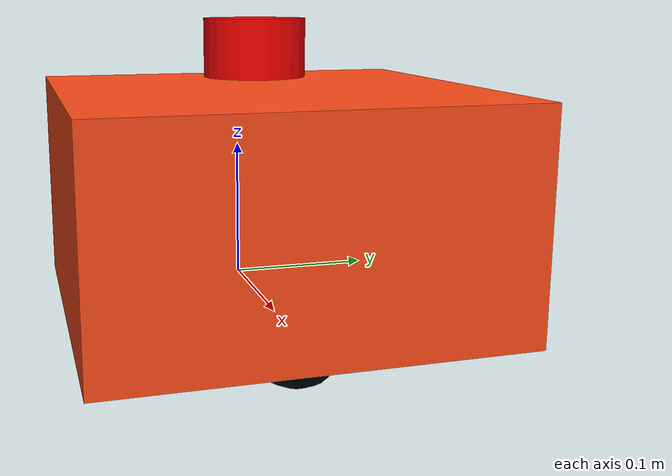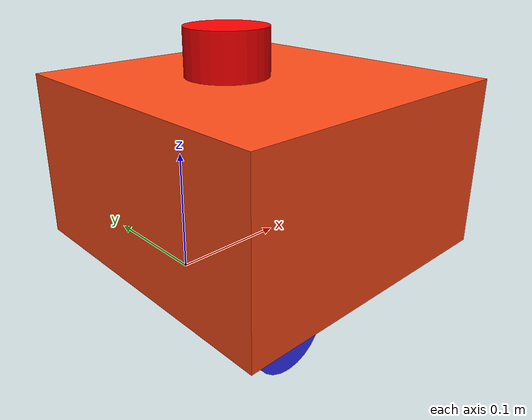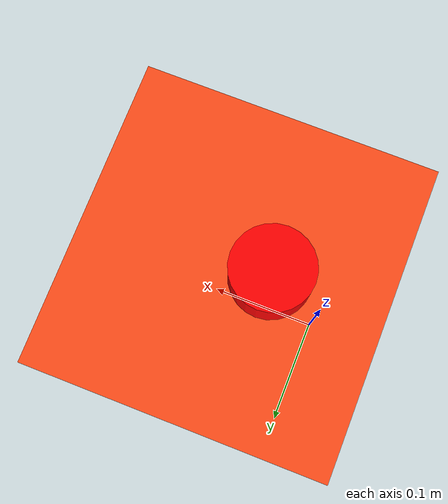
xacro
<?xml version="1.0"?>
<robot xmlns:xacro="http://www.ros.org/wiki/xacro" name="robot">

    <xacro:arg name="use_ros2_control" default="true"/>
    <xacro:arg name="sim_mode" default="false"/>

    <xacro:include filename="robot_main.xacro" />
    <xacro:include filename="lidar.xacro" />

    <xacro:if value="$(arg use_ros2_control)">
        <xacro:include filename="ros2_control.xacro" />
    </xacro:if>
    <xacro:unless value="$(arg use_ros2_control)">
        <xacro:include filename="gz_diff_drive_control.xacro" />
    </xacro:unless>

</robot>

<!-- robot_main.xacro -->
<robot xmlns:xacro="http://www.ros.org/wiki/xacro">

    <xacro:include filename="inertial_macros.xacro"/>

    <material name="white">
        <color rgba="1 1 1 1" />
    </material>

    <material name="orange">
        <color rgba="1 0.3 0.1 1"/>
    </material>

    <material name="blue">
        <color rgba="0.2 0.2 1 1"/>
    </material>

    <material name="black">
        <color rgba="0 0 0 1"/>
    </material>

    <material name="red">
        <color rgba="1 0 0 1"/>
    </material>

    <!-- BASE LINK -->
    <link name="base_link">
    </link>

    <!-- BASE_FOOTPRINT LINK -->
    <joint name="base_footprint_joint" type="fixed">
        <parent link="base_link"/>
        <child link="base_footprint"/>
        <origin xyz="0 0 0" rpy="0 0 0"/>
    </joint>

    <link name="base_footprint">
    </link>

    <!-- CHASSIS LINK -->
    <joint name="chassis_joint" type="fixed">
        <parent link="base_link"/>
        <child link="chassis"/>
        <origin xyz="-0.05 0 0"/>
    </joint>

    <link name="chassis">
        <visual>
            <origin xyz="0.1325 0 0.075"/>
            <geometry>
                <box size="0.265 0.275 0.15"/>
            </geometry>
            <material name="orange"/>
        </visual>
        <collision>
            <origin xyz="0.1325 0 0.075"/>
            <geometry>
                <box size="0.265 0.275 0.15"/>
            </geometry>
        </collision>
        <xacro:inertial_box mass="1.5" x="0.265" y="0.275" z="0.15">
            <origin xyz="0.1325 0 0.075" rpy="0 0 0"/>
        </xacro:inertial_box>
    </link>

    <gazebo reference="chassis">
        <material>Gazebo/Orange</material>
    </gazebo>

    <!-- LEFT WHEEL LINK -->
    <joint name="left_wheel_joint" type="continuous">
        <parent link="base_link"/>
        <child link="left_wheel"/>
        <origin xyz="0 0.11 0" rpy="-${pi/2} 0 0" />
        <axis xyz="0 0 1"/>
    </joint>

    <link name="left_wheel">
        <visual>
            <geometry>
                <cylinder radius="0.033" length="0.026"/>
            </geometry>
            <material name="blue"/>
        </visual>
        <collision>
            <geometry>
                <sphere radius="0.033"/>
            </geometry>
        </collision>
        <xacro:inertial_cylinder mass="0.1" length="0.026" radius="0.033">
            <origin xyz="0 0 0" rpy="0 0 0"/>
        </xacro:inertial_cylinder>
    </link>

    <gazebo reference="left_wheel">
        <material>Gazebo/Blue</material>
        <mu1 value="1.0"/>
        <mu2 value="1.0"/>
    </gazebo>

    <!-- RIGHT WHEEL LINK -->
    <joint name="right_wheel_joint" type="continuous">
        <parent link="base_link"/>
        <child link="right_wheel"/>
        <origin xyz="0 -0.11 0" rpy="${pi/2} 0 0" />
        <axis xyz="0 0 -1"/>
    </joint>

    <link name="right_wheel">
        <visual>
            <geometry>
                <cylinder radius="0.033" length="0.026"/>
            </geometry>
            <material name="blue"/>
        </visual>
        <collision>
            <geometry>
                <sphere radius="0.033"/>
            </geometry>
        </collision>
        <xacro:inertial_cylinder mass="0.1" length="0.026" radius="0.033">
            <origin xyz="0 0 0" rpy="0 0 0"/>
        </xacro:inertial_cylinder>
    </link>

    <gazebo reference="right_wheel">
        <material>Gazebo/Blue</material>
        <mu1 value="1.0"/>
        <mu2 value="1.0"/>
    </gazebo>

    <!-- CASTER WHEEL LINK -->
    <joint name="caster_wheel_joint" type="fixed">
        <parent link="chassis"/>
        <child link="caster_wheel"/>
        <origin xyz="0.20 0 0"/>
    </joint>

    <link name="caster_wheel">
        <visual>
            <geometry>
                <sphere radius="0.033"/>
            </geometry>
            <material name="black"/>
        </visual>
        <collision>
            <geometry>
                <sphere radius="0.033"/>
            </geometry>
        </collision>
        <xacro:inertial_sphere mass="0.05" radius="0.033">
            <origin xyz="0 0 0" rpy="0 0 0"/>
        </xacro:inertial_sphere>
    </link>

    <gazebo reference="caster_wheel">
        <material>Gazebo/Black</material>
        <mu1 value="0.001"/>
        <mu2 value="0.001"/>
    </gazebo>

</robot>

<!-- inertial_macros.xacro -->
<robot xmlns:xacro="http://www.ros.org/wiki/xacro">

    <xacro:macro name="inertial_sphere" params="mass radius *origin">
        <inertial>
            <xacro:insert_block name="origin"/>
            <mass value="${mass}" />
            <inertia ixx="${(2/5) * mass * (radius*radius)}" ixy="0.0" ixz="0.0"
                    iyy="${(2/5) * mass * (radius*radius)}" iyz="0.0"
                    izz="${(2/5) * mass * (radius*radius)}" />
        </inertial>
    </xacro:macro>

    <xacro:macro name="inertial_box" params="mass x y z *origin">
        <inertial>
            <xacro:insert_block name="origin"/>
            <mass value="${mass}" />
            <inertia ixx="${(1/12) * mass * (y*y + z*z)}" ixy="0.0" ixz="0.0"
                    iyy="${(1/12) * mass * (x*x + z*z)}" iyz="0.0"
                    izz="${(1/12) * mass * (x*x + y*y)}" />
        </inertial>
    </xacro:macro>

    <xacro:macro name="inertial_cylinder" params="mass length radius *origin">
        <inertial>
            <xacro:insert_block name="origin"/>
            <mass value="${mass}" />
            <inertia ixx="${(1/12) * mass * (3*radius*radius + length*length)}" ixy="0.0" ixz="0.0"
                    iyy="${(1/12) * mass * (3*radius*radius + length*length)}" iyz="0.0"
                    izz="${(1/2) * mass * (radius*radius)}" />
        </inertial>
    </xacro:macro>

</robot>

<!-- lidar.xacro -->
<robot xmlns:xacro="http://www.ros.org/wiki/xacro">

    <joint name="laser_joint" type="fixed">
        <parent link="chassis"/>
        <child link="laser_frame"/>
        <origin xyz="0.10 0 0.175" rpy="0 0 0"/>
    </joint>

    <link name="laser_frame">
        <visual>
            <geometry>
                <cylinder radius="0.035" length="0.04"/>
            </geometry>
            <material name="red"/>
        </visual>
        <collision>
            <geometry>
                <cylinder radius="0.035" length="0.04"/>
            </geometry>
        </collision>
        <xacro:inertial_cylinder mass="0.12" length="0.04" radius="0.035">
            <origin xyz="0 0 0" rpy="0 0 0"/>
        </xacro:inertial_cylinder>
    </link>

    <gazebo reference="laser_frame">
        <material>Gazebo/Red</material>
        <sensor name="laser" type="ray">
            <pose> 0 0 0 0 0 0 </pose>
            <visualize>true</visualize>
            <update_rate>10</update_rate>
            <ray>
                <scan>
                    <horizontal>
                        <samples>360</samples>
                        <min_angle>-3.14159</min_angle>
                        <max_angle>3.14159</max_angle>
                    </horizontal>
                </scan>
                <range>
                    <min>0.12</min>
                    <max>12.0</max>
                    <resolution>0.01</resolution>
                </range>
            </ray>
            <plugin name="laser_controller" filename="libgazebo_ros_ray_sensor.so">
                <ros>
                    <argument>~/out:=scan</argument>
                </ros>
                <output_type>sensor_msgs/LaserScan</output_type>
                <frame_name>laser_frame</frame_name>
            </plugin>
        </sensor>
    </gazebo>

</robot>
